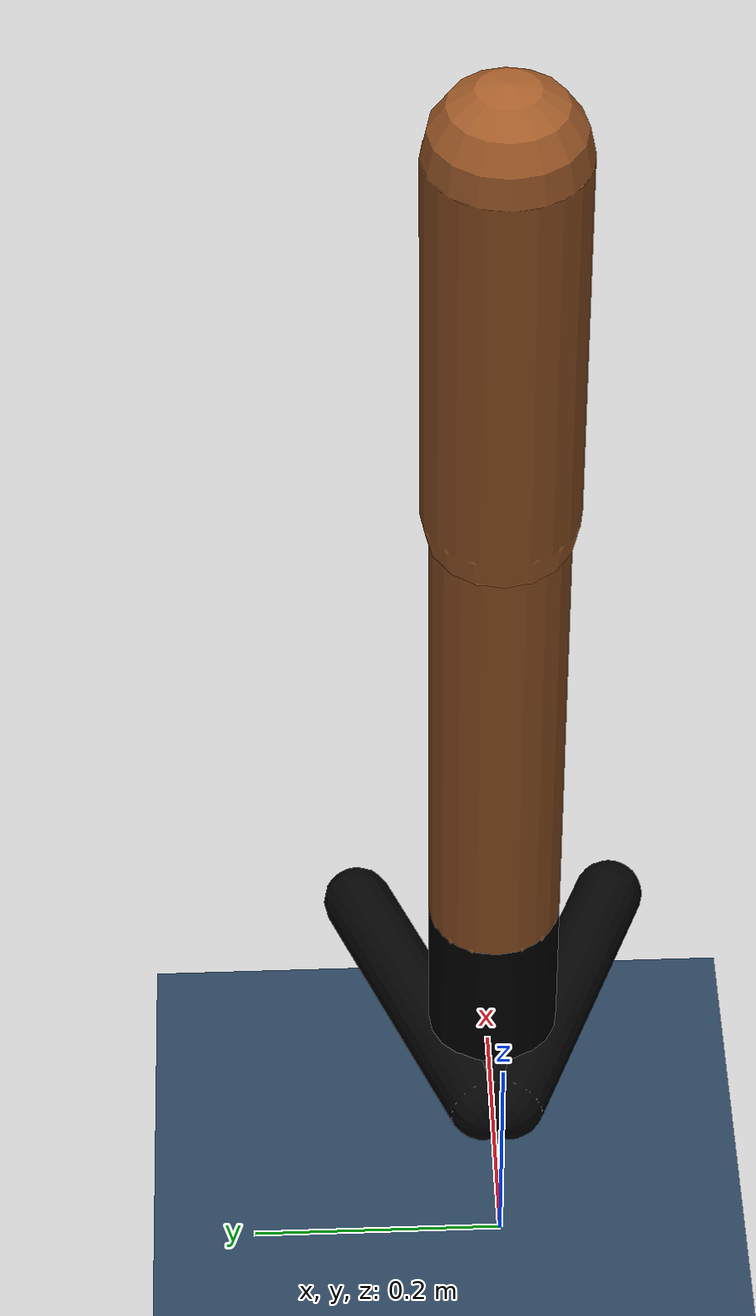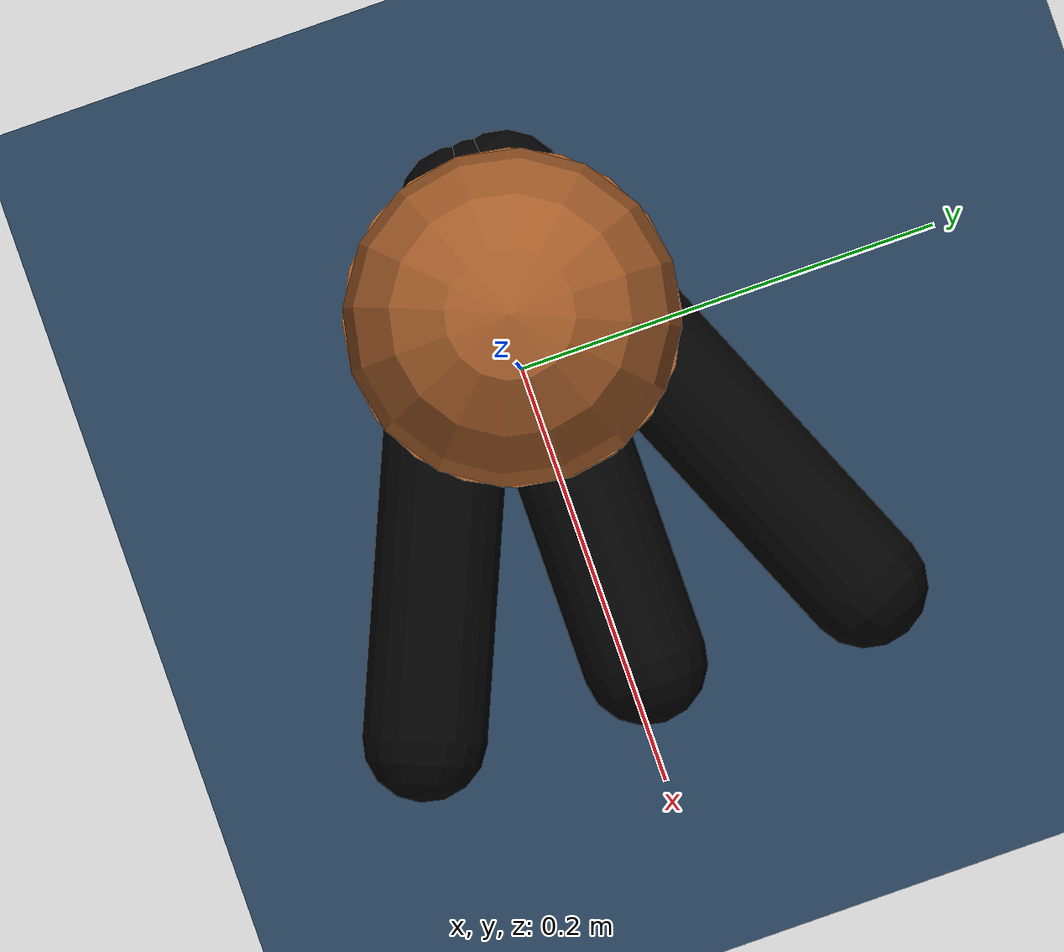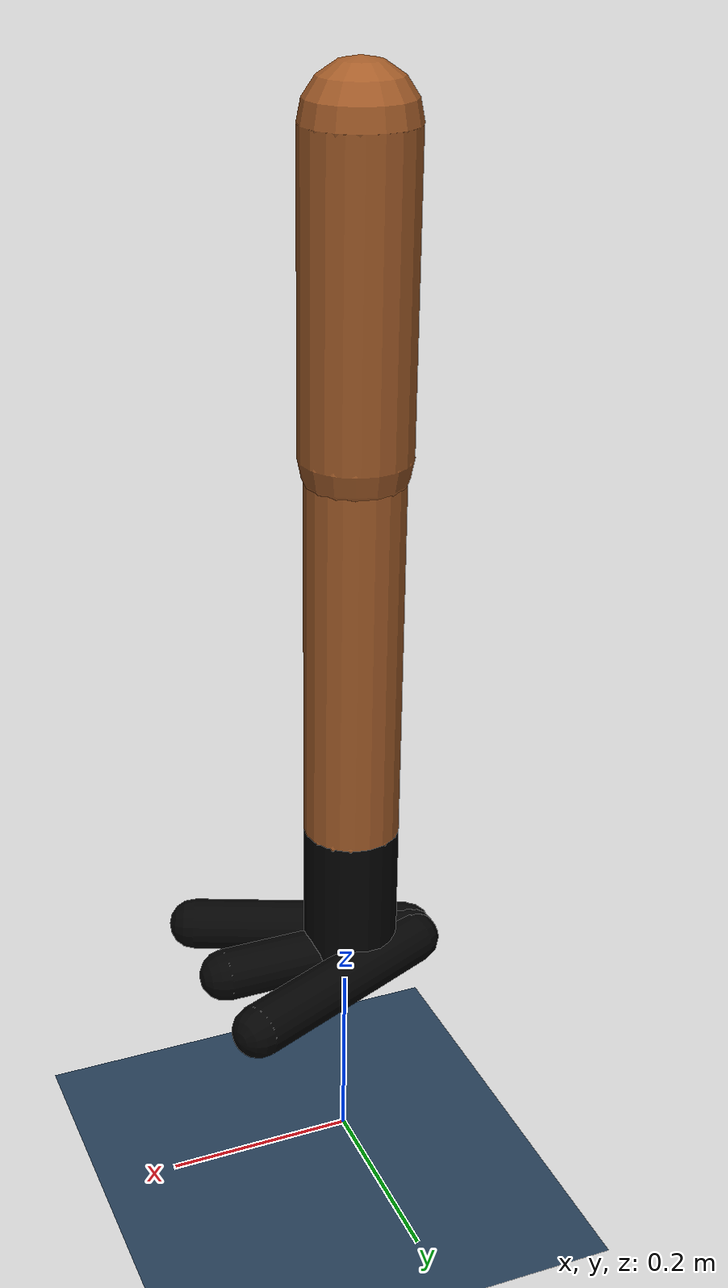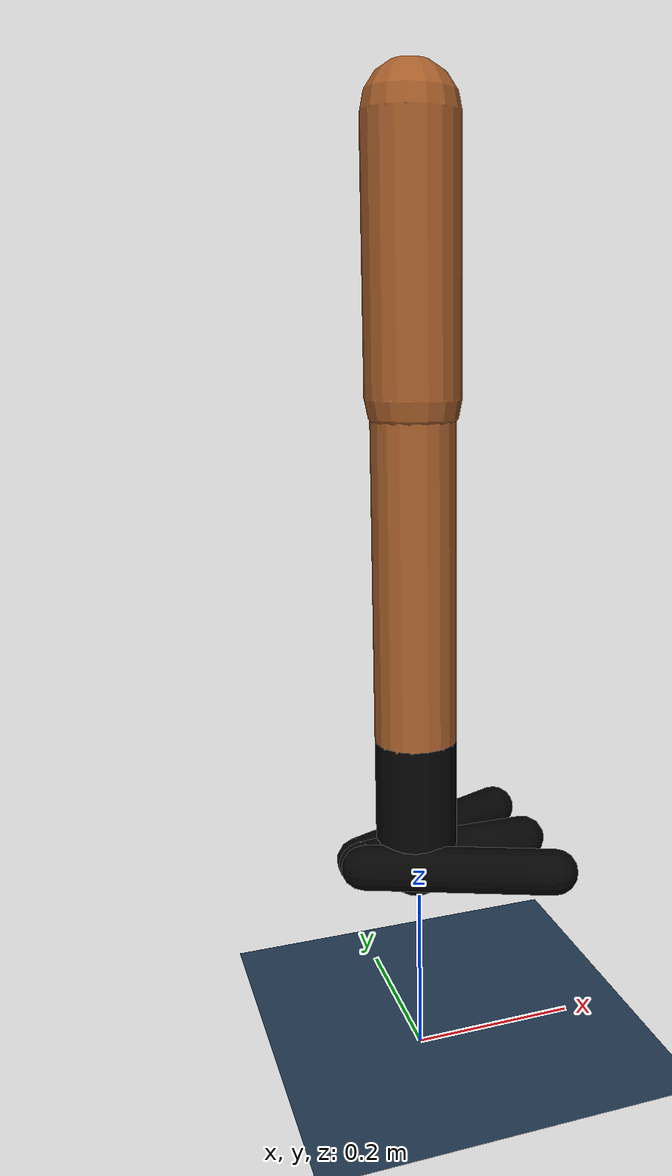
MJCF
<mujoco model="lower_right_leg">
<option timestep="0.005"/>

<asset>
  <texture name="body" type="cube" builtin="flat" mark="cross"
           width="128" height="128"
           rgb1="0.8 0.6 0.4" rgb2="0.8 0.6 0.4" markrgb="1 1 1"/>
  <material name="body" texture="body" texuniform="true" rgba="0.8 0.6 .4 1"/>

  <!-- Black material for shin2, ankle, foot -->
  <texture name="dark" type="cube" builtin="flat"
           width="128" height="128"
           rgb1="0.1 0.1 0.1" rgb2="0.1 0.1 0.1"/>
  <material name="dark" texture="dark" texuniform="true" rgba="0.1 0.1 0.1 1"/>

  <texture name="grid" type="2d" builtin="checker"
           width="512" height="512" rgb1=".1 .2 .3" rgb2=".2 .3 .4"/>
  <material name="grid" texture="grid" texrepeat="1 1"
            texuniform="true" reflectance=".2"/>
</asset>

<default>
  <motor ctrlrange="-1 1" ctrllimited="true"/>

  <default class="body">
    <geom type="capsule" condim="1" friction=".7"
          solimp=".9 .99 .003" solref=".015 1" material="body" group="1"/>
    <joint type="hinge" damping=".2" stiffness="1" armature=".01"
           limited="true" solimplimit="0 .99 .01"/>

    <default class="thigh">
      <geom fromto="0 0 0  0 0 -.3" size=".055"/>
    </default>

    <!-- shin1: skin-coloured upper shin -->
    <default class="shin1">
      <geom fromto="0 0 0  0 0 -.4" size=".049"/>
    </default>

    <!-- shin2: black lower shin -->
    <default class="shin2">
      <geom fromto="0 0 0  0 0 -.15" size=".049" material="dark"/>
    </default>

    <default class="hip">
      <joint pos="0 0 0" axis="0 1 0" range="-60 90"
             damping=".3" stiffness="2"/>
    </default>

    <default class="knee">
      <joint pos="0 0 .02" axis="0 1 0" range="-160 2"/>
    </default>

    <!-- Mid-shin joint connecting shin1 to shin2 -->
    <default class="mid_shin">
      <joint pos="0 0 0" axis="0 1 0" range="-30 30"
             damping=".2" stiffness="2"/>
    </default>

    <default class="ankle">
      <joint range="-90 90"/>
      <default class="ankle_y">
        <joint pos="0 0 .08" axis="0 1 0" stiffness="6"/>
      </default>
      <default class="ankle_x">
        <joint pos="0 0 .04" stiffness="3"/>
      </default>
    </default>
  </default>

  <!-- Black foot capsules -->
  <default class="foot1">
    <geom type="capsule" size=".027" fromto="-.07 -.01 0  .14 -.1 0"
          material="dark" condim="1" friction=".7"
          solimp=".9 .99 .003" solref=".015 1" group="1"/>
  </default>
  <default class="foot2">
    <geom type="capsule" size=".027" fromto="-.07 .00 0  .14 .00 0"
          material="dark" condim="1" friction=".7"
          solimp=".9 .99 .003" solref=".015 1" group="0"/>
  </default>
  <default class="foot3">
    <geom type="capsule" size=".027" fromto="-.07 .01 0  .14 .1 0"
          material="dark" condim="1" friction=".7"
          solimp=".9 .99 .003" solref=".015 1" group="1"/>
  </default>
</default>

<worldbody>
  <geom name="floor" size="0 0 .05" type="plane" material="grid" condim="3"/>
  <light name="top" pos="0 0 3" dir="0 0 -1" diffuse=".9 .9 .9"/>

  <body name="anchor" pos="0 0 1.1" childclass="body">

    <body name="thigh_right" pos="0 .01 0">
      <joint name="hip_right"   class="hip"/>
      <geom  name="thigh_right" class="thigh"/>

      <body name="shin1_right" pos="0 0 -.3">
        <joint name="knee_right"  class="knee"/>
        <geom  name="shin1_right" class="shin1"/>

        <!-- Mid-shin: where skin colour changes to black -->
        <body name="shin2_right" pos="0 0 -.4">
          <joint name="mid_shin_right" class="mid_shin"/>
          <geom  name="shin2_right"    class="shin2"/>

          <body name="foot_right" pos="0 0 -.15">
            <joint name="ankle_y_right" class="ankle_y"/>
            <joint name="ankle_x_right" class="ankle_x" axis="1 0 .5"/>
            <geom  name="foot1_right"   class="foot1"/>
            <geom  name="foot2_right"   class="foot2"/>
            <geom  name="foot3_right"   class="foot3"/>
          </body><!-- end foot_right -->

        </body><!-- end shin2_right -->
      </body><!-- end shin1_right -->
    </body><!-- end thigh_right -->

  </body><!-- end anchor -->
</worldbody>

<actuator>
  <!-- qpos / ctrl order: hip, knee, mid_shin, ankle_y, ankle_x -->
  <motor name="hip_right"      gear="120" joint="hip_right"/>
  <motor name="knee_right"     gear="80"  joint="knee_right"/>
  <motor name="mid_shin_right" gear="40"  joint="mid_shin_right"/>
  <motor name="ankle_y_right"  gear="20"  joint="ankle_y_right"/>
  <motor name="ankle_x_right"  gear="20"  joint="ankle_x_right"/>
</actuator>

<keyframe>
  <!-- qpos order: hip | knee | mid_shin | ankle_y | ankle_x -->
  <key name="stand" qpos="0 0 0 0 0"/>
</keyframe>

</mujoco>
